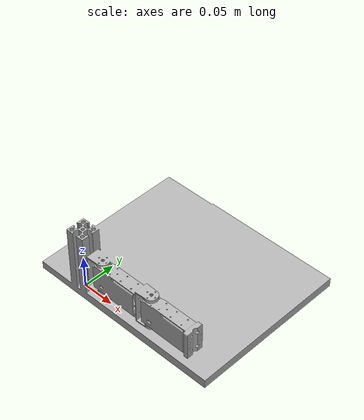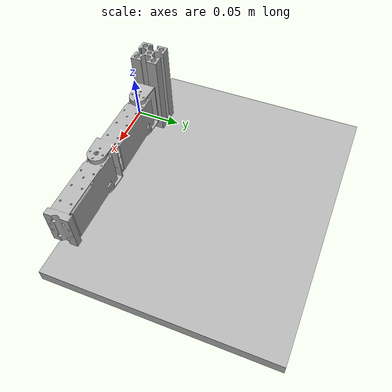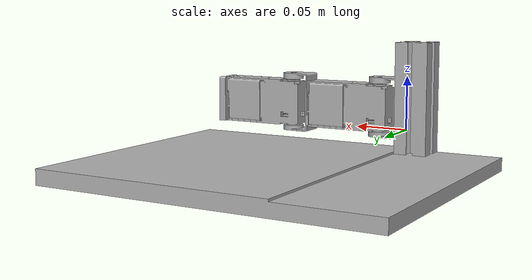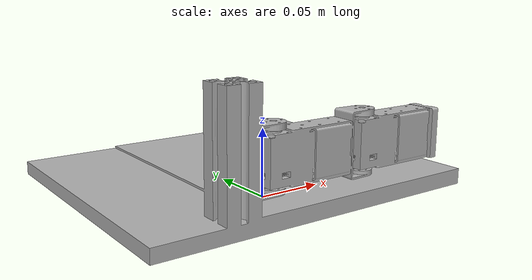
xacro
<?xml version="1.0"?>
<robot xmlns:xacro="http://www.ros.org/wiki/xacro" name="rh_plus_2_axis_manipulator">
    <xacro:arg name="initial_positions_file" default="initial_positions.yaml" />
    <xacro:arg name="ros2_control_hardware_type" default="fake" />

    <!-- Import rh_plus_2_axis_manipulator urdf file -->
    <xacro:include filename="$(find rh_plus_2_axis_manipulator_description)/urdf/rh_plus_2_axis_manipulator.xacro" />

    <!-- Import control_xacro -->
    <xacro:include filename="rh_plus_2_axis_manipulator.ros2_control.xacro" />

    <xacro:rh_plus_2_axis_manipulator_ros2_control name="TwomaniSystem" initial_positions_file="$(arg initial_positions_file)" ros2_control_hardware_type="$(arg ros2_control_hardware_type)"/>

</robot>

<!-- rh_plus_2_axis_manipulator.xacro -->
<robot name="rh_plus_2_axis_manipulator"
  xmlns:xacro="http://www.ros.org/wiki/xacro">

  <xacro:include filename="$(find rh_plus_2_axis_manipulator_description)/urdf/materials.xacro" />
  <xacro:include filename="$(find rh_plus_2_axis_manipulator_description)/urdf/rh_plus_2_axis_manipulator.trans" />
  <xacro:include filename="$(find rh_plus_2_axis_manipulator_description)/urdf/rh_plus_2_axis_manipulator.gazebo" />
  <link name="base_link">
    <visual>
      <origin xyz="0 0 0" rpy="0 0 0"/>
      <geometry>
        <mesh filename="file://$(find rh_plus_2_axis_manipulator_description)/meshes/base_link.stl" scale="0.001 0.001 0.001"/>
      </geometry>
      <material name="silver"/>
    </visual>
    <collision>
      <origin xyz="0 0 0" rpy="0 0 0"/>
      <geometry>
        <mesh filename="file://$(find rh_plus_2_axis_manipulator_description)/meshes/base_link.stl" scale="0.001 0.001 0.001"/>
      </geometry>
    </collision>
  </link>

  <link name="link1">
    <visual>
      <origin xyz="0 0 0" rpy="0 0 0"/>
      <geometry>
        <mesh filename="file://$(find rh_plus_2_axis_manipulator_description)/meshes/link1.stl" scale="0.001 0.001 0.001"/>
      </geometry>
      <material name="silver"/>
    </visual>
    <collision>
      <origin xyz="0 0 0" rpy="0 0 0"/>
      <geometry>
        <mesh filename="file://$(find rh_plus_2_axis_manipulator_description)/meshes/link1.stl" scale="0.001 0.001 0.001"/>
      </geometry>
    </collision>
  </link>

  <link name="link2">
    <visual>
      <origin xyz="0 0 0" rpy="0 0 0"/>
      <geometry>
        <mesh filename="file://$(find rh_plus_2_axis_manipulator_description)/meshes/link2.stl" scale="0.001 0.001 0.001"/>
      </geometry>
      <material name="silver"/>
    </visual>
    <collision>
      <origin xyz="0 0 0" rpy="0 0 0"/>
      <geometry>
        <mesh filename="file://$(find rh_plus_2_axis_manipulator_description)/meshes/link2.stl" scale="0.001 0.001 0.001"/>
      </geometry>
    </collision>
  </link>

  <joint name="joint1" type="revolute">
    <origin xyz="0.021 0.015 0.0472" rpy="0 0 0"/>
    <parent link="base_link"/>
    <child link="link1"/>
    <axis xyz="0 0 -1"/>
    <limit upper="2.094395" lower="-2.094395" effort="100" velocity="5.8178"/>
  </joint>

  <joint name="joint2" type="revolute">
    <origin xyz="0.09012 0.0 0.0" rpy="0 0 0"/>
    <parent link="link1"/>
    <child link="link2"/>
    <axis xyz="0 0 -1"/>
    <limit upper="2.094395" lower="-2.094395" effort="100" velocity="5.8178"/>
  </joint>
</robot>

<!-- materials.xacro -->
<robot name="rh_plus_2_axis_manipulator" xmlns:xacro="http://www.ros.org/wiki/xacro" >

<material name="silver">
  <color rgba="0.700 0.700 0.700 1.000"/>
</material>

</robot>

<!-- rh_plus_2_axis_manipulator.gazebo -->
<robot name="rh_plus_2_axis_manipulator" xmlns:xacro="http://www.ros.org/wiki/xacro" >

<xacro:property name="body_color" value="Gazebo/Silver" />

<gazebo>
  <plugin name="control" filename="libgazebo_ros_control.so"/>
</gazebo>
<gazebo reference="base_link">
  <material>${body_color}</material>
  <mu1>0.2</mu1>
  <mu2>0.2</mu2>
  <self_collide>true</self_collide>
  <gravity>true</gravity>
</gazebo>

<gazebo reference="link1">
  <material>${body_color}</material>
  <mu1>0.2</mu1>
  <mu2>0.2</mu2>
  <self_collide>true</self_collide>
</gazebo>

<gazebo reference="link2">
  <material>${body_color}</material>
  <mu1>0.2</mu1>
  <mu2>0.2</mu2>
  <self_collide>true</self_collide>
</gazebo>

<gazebo reference="link3">
  <material>${body_color}</material>
  <mu1>0.2</mu1>
  <mu2>0.2</mu2>
  <self_collide>true</self_collide>
</gazebo>

</robot>
